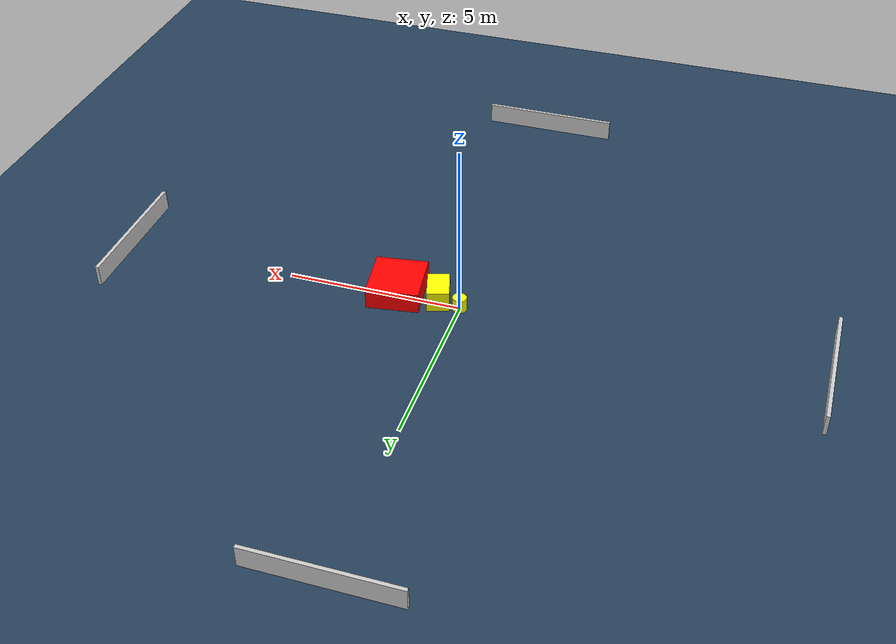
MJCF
<?xml version="1.0" ?>
<mujoco model="generated_environment">
  <option timestep="0.01" integrator="RK4" cone="elliptic"/>
  <default>
    <geom density="1"/>
  </default>
  <asset>
    <texture builtin="gradient" height="3072" name="skybox" rgb1="0.3 0.5 0.7" rgb2="0 0 0" type="skybox" width="512"/>
    <texture builtin="checker" height="300" name="groundplane" rgb1="0.2 0.3 0.4" rgb2="0.1 0.2 0.3" type="2d" width="300"/>
    <material name="groundplane" reflectance="0.2" texrepeat="5 5" texture="groundplane"/>
  </asset>
  <worldbody>
    <light dir="0 0 -1" directional="true" pos="0 0 1.5"/>
    <geom condim="3" friction="0.5 0.005 0.001" material="groundplane" name="floor" pos="0 0 0" size="0 0 0.05" type="plane"/>
    <body name="walls">
      <geom name="wall_1" condim="4" pos="-10.0 0.0 0.3" rgba="0.800000011920929 0.800000011920929 0.800000011920929 1.0" size="0.05 2.0 0.3" type="box"/>
      <geom name="wall_2" condim="4" pos="10.0 0.0 0.3" rgba="0.800000011920929 0.800000011920929 0.800000011920929 1.0" size="0.05 2.0 0.3" type="box"/>
      <geom name="wall_3" condim="4" pos="0.0 -10.0 0.3" rgba="0.800000011920929 0.800000011920929 0.800000011920929 1.0" size="2.0 0.05 0.3" type="box"/>
      <geom name="wall_4" condim="4" pos="0.0 10.0 0.3" rgba="0.800000011920929 0.800000011920929 0.800000011920929 1.0" size="2.0 0.05 0.3" type="box"/>
    </body>
    <body name="robot">
      <joint name="joint_x" type="slide" pos="0 0 0" axis="1 0 0"/>
      <joint name="joint_y" type="slide" pos="0 0 0" axis="0 1 0"/>
      <geom name="robot" type="cylinder" pos="0.0 0.0 0.2" size="0.2 0.2 0.0" mass="5.0" friction="1.0 0.005 0.0001" condim="4" rgba="1.0 1.0 0.0 1.0"/>
    </body>
    <body name="obstacle_1_movable">
      <geom name="obstacle_1_movable" condim="4" pos="0.6681875642304718 -0.15983054776316896 0.3" euler="0 0 196.1772085774001" friction="0.0 0.005 0.001" rgba="1.0 1.0 0.0 1.0" size="0.31020195361818864 0.45812235344087665 0.3" type="box" mass="0.1"/>
      <joint type="free"/>
    </body>
    <body name="obstacle_2_static">
      <geom name="obstacle_2_static" condim="4" pos="1.86811586052664 -0.15855663616134963 0.3" euler="0 0 98.00736661269873" friction="0.0 0.005 0.001" rgba="1.0 0.0 0.0 1.0" size="0.7789603237267295 0.7406104303155525 0.3" type="box"/>
    </body>
  </worldbody>
  <actuator>
    <motor name="actuator_x" joint="joint_x" gear="1" ctrlrange="-1 1"/>
    <motor name="actuator_y" joint="joint_y" gear="1" ctrlrange="-1 1"/>
  </actuator>
</mujoco>
